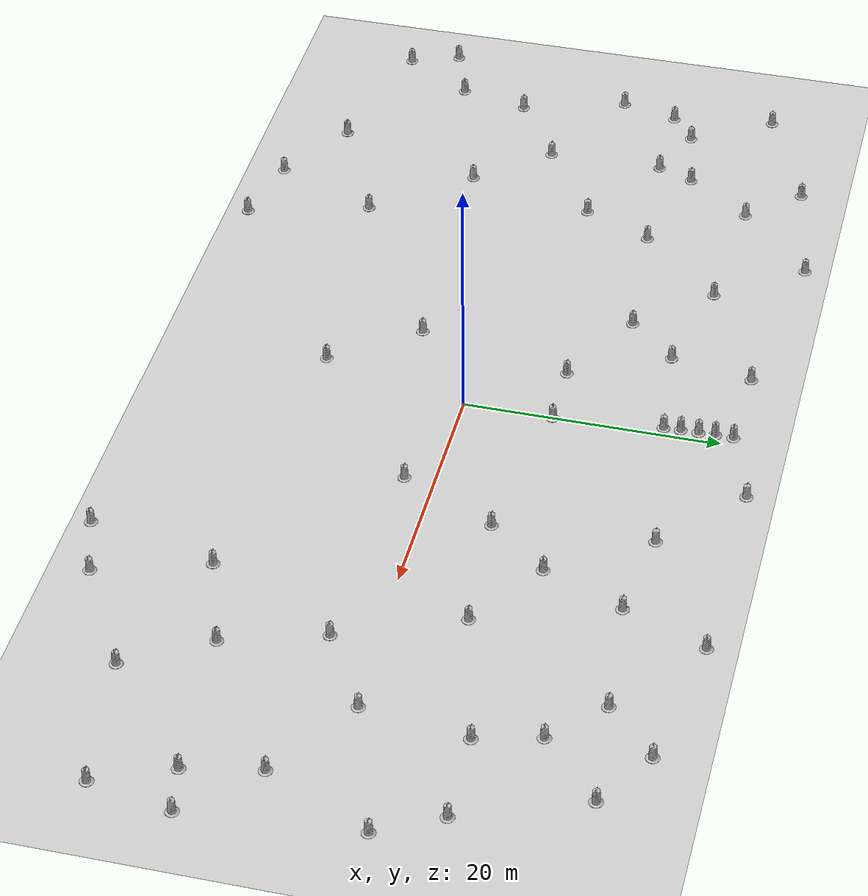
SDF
<sdf version="1.4">
 <world name="default">
  <model name="igvc_basic_course_plane">
   <static>1</static>
   <link name="link">
    <collision name="collision">
     <geometry><plane><normal>0 0 1</normal><size>100 50</size></plane></geometry>
     <surface><friction><ode><mu>100</mu><mu2>50</mu2></ode></friction></surface>
    </collision>
    <visual name="visual">
     <cast_shadows>0</cast_shadows>
     <geometry><plane><normal>0 0 1</normal><size>100 50</size></plane></geometry>
     <material>
      <script>
       <uri>model://igvc_basic_course_plane/materials/scripts</uri>
       <uri>model://igvc_basic_course_plane/materials/textures</uri>
       <name>igvc_basic_course_plane/Image</name>
      </script>
     </material>
    </visual>
    <velocity_decay><linear>0</linear><angular>0</angular></velocity_decay>
   </link>
  </model>
  <light name="sun" type="directional">
   <pose>0 0 10 0 -0 0</pose>
   <diffuse>0.8 0.8 0.8 1</diffuse>
   <specular>0.2 0.2 0.2 1</specular>
   <attenuation>
    <range>1000</range>
    <constant>0.9</constant>
    <linear>0.01</linear>
    <quadratic>0.001</quadratic>
   </attenuation>
   <direction>-0.5 0.1 -0.9</direction>
  </light>
  <physics type="ode">
   <max_step_size>0.001</max_step_size>
   <real_time_factor>1</real_time_factor>
   <real_time_update_rate>1000</real_time_update_rate>
   <gravity>0 0 -9.8</gravity>
  </physics>
  <scene><ambient>0.4 0.4 0.4 1</ambient><background>0.7 0.7 0.7 1</background><shadows>1</shadows></scene>
  <spherical_coordinates>
   <surface_model>EARTH_WGS84</surface_model>
   <latitude_deg>0</latitude_deg>
   <longitude_deg>0</longitude_deg>
   <elevation>0</elevation>
   <heading_deg>0</heading_deg>
  </spherical_coordinates>
  <model name="Construction Barrel">
   <link name="link">
    <inertial>
     <pose>0 0 0.4 0 -0 0</pose>
     <mass>500</mass>
     <inertia><ixx>51.2096</ixx><iyy>51.2096</iyy><izz>25</izz><ixy>0</ixy><ixz>0</ixz><iyz>0</iyz></inertia>
    </inertial>
    <collision name="collision">
     <geometry><mesh><uri>model://construction_barrel/meshes/construction_barrel.dae</uri></mesh></geometry>
    </collision>
    <visual name="visual">
     <geometry><mesh><uri>model://construction_barrel/meshes/construction_barrel.dae</uri></mesh></geometry>
    </visual>
    <velocity_decay><linear>0</linear><angular>0</angular></velocity_decay>
   </link>
   <pose>43.7404 -15.3735 0 0 -0 0</pose>
   <static>0</static>
  </model>
  <model name="Construction Barrel_0">
   <link name="link">
    <inertial>
     <pose>0 0 0.4 0 -0 0</pose>
     <mass>500</mass>
     <inertia><ixx>51.2096</ixx><iyy>51.2096</iyy><izz>25</izz><ixy>0</ixy><ixz>0</ixz><iyz>0</iyz></inertia>
    </inertial>
    <collision name="collision">
     <geometry><mesh><uri>model://construction_barrel/meshes/construction_barrel.dae</uri></mesh></geometry>
    </collision>
    <visual name="visual">
     <geometry><mesh><uri>model://construction_barrel/meshes/construction_barrel.dae</uri></mesh></geometry>
    </visual>
    <velocity_decay><linear>0</linear><angular>0</angular></velocity_decay>
   </link>
   <pose>45 -9 0 0 -0 0</pose>
   <static>0</static>
  </model>
  <model name="Construction Barrel_1">
   <link name="link">
    <inertial>
     <pose>0 0 0.4 0 -0 0</pose>
     <mass>500</mass>
     <inertia><ixx>51.2096</ixx><iyy>51.2096</iyy><izz>25</izz><ixy>0</ixy><ixz>0</ixz><iyz>0</iyz></inertia>
    </inertial>
    <collision name="collision">
     <geometry><mesh><uri>model://construction_barrel/meshes/construction_barrel.dae</uri></mesh></geometry>
    </collision>
    <visual name="visual">
     <geometry><mesh><uri>model://construction_barrel/meshes/construction_barrel.dae</uri></mesh></geometry>
    </visual>
    <velocity_decay><linear>0</linear><angular>0</angular></velocity_decay>
   </link>
   <pose>41.2248 -9.74021 0 0 -0 0</pose>
   <static>0</static>
  </model>
  <model name="Construction Barrel_2">
   <link name="link">
    <inertial>
     <pose>0 0 0.4 0 -0 0</pose>
     <mass>500</mass>
     <inertia><ixx>51.2096</ixx><iyy>51.2096</iyy><izz>25</izz><ixy>0</ixy><ixz>0</ixz><iyz>0</iyz></inertia>
    </inertial>
    <collision name="collision">
     <geometry><mesh><uri>model://construction_barrel/meshes/construction_barrel.dae</uri></mesh></geometry>
    </collision>
    <visual name="visual">
     <geometry><mesh><uri>model://construction_barrel/meshes/construction_barrel.dae</uri></mesh></geometry>
    </visual>
    <velocity_decay><linear>0</linear><angular>0</angular></velocity_decay>
   </link>
   <pose>43.782 4.12723 0 0 -0 0</pose>
   <static>0</static>
  </model>
  <model name="Construction Barrel_3">
   <link name="link">
    <inertial>
     <pose>0 0 0.4 0 -0 0</pose>
     <mass>500</mass>
     <inertia><ixx>51.2096</ixx><iyy>51.2096</iyy><izz>25</izz><ixy>0</ixy><ixz>0</ixz><iyz>0</iyz></inertia>
    </inertial>
    <collision name="collision">
     <geometry><mesh><uri>model://construction_barrel/meshes/construction_barrel.dae</uri></mesh></geometry>
    </collision>
    <visual name="visual">
     <geometry><mesh><uri>model://construction_barrel/meshes/construction_barrel.dae</uri></mesh></geometry>
    </visual>
    <velocity_decay><linear>0</linear><angular>0</angular></velocity_decay>
   </link>
   <pose>40.0575 -4.01712 0 0 -0 0</pose>
   <static>0</static>
  </model>
  <model name="Construction Barrel_4">
   <link name="link">
    <inertial>
     <pose>0 0 0.4 0 -0 0</pose>
     <mass>500</mass>
     <inertia><ixx>51.2096</ixx><iyy>51.2096</iyy><izz>25</izz><ixy>0</ixy><ixz>0</ixz><iyz>0</iyz></inertia>
    </inertial>
    <collision name="collision">
     <geometry><mesh><uri>model://construction_barrel/meshes/construction_barrel.dae</uri></mesh></geometry>
    </collision>
    <visual name="visual">
     <geometry><mesh><uri>model://construction_barrel/meshes/construction_barrel.dae</uri></mesh></geometry>
    </visual>
    <velocity_decay><linear>0</linear><angular>0</angular></velocity_decay>
   </link>
   <pose>32.9209 0.512122 0 0 -0 0</pose>
   <static>0</static>
  </model>
  <model name="Construction Barrel_5">
   <link name="link">
    <inertial>
     <pose>0 0 0.4 0 -0 0</pose>
     <mass>500</mass>
     <inertia><ixx>51.2096</ixx><iyy>51.2096</iyy><izz>25</izz><ixy>0</ixy><ixz>0</ixz><iyz>0</iyz></inertia>
    </inertial>
    <collision name="collision">
     <geometry><mesh><uri>model://construction_barrel/meshes/construction_barrel.dae</uri></mesh></geometry>
    </collision>
    <visual name="visual">
     <geometry><mesh><uri>model://construction_barrel/meshes/construction_barrel.dae</uri></mesh></geometry>
    </visual>
    <velocity_decay><linear>0</linear><angular>0</angular></velocity_decay>
   </link>
   <pose>41.2616 8.85082 0 0 -0 0</pose>
   <static>0</static>
  </model>
  <model name="Construction Barrel_6">
   <link name="link">
    <inertial>
     <pose>0 0 0.4 0 -0 0</pose>
     <mass>500</mass>
     <inertia><ixx>51.2096</ixx><iyy>51.2096</iyy><izz>25</izz><ixy>0</ixy><ixz>0</ixz><iyz>0</iyz></inertia>
    </inertial>
    <collision name="collision">
     <geometry><mesh><uri>model://construction_barrel/meshes/construction_barrel.dae</uri></mesh></geometry>
    </collision>
    <visual name="visual">
     <geometry><mesh><uri>model://construction_barrel/meshes/construction_barrel.dae</uri></mesh></geometry>
    </visual>
    <velocity_decay><linear>0</linear><angular>0</angular></velocity_decay>
   </link>
   <pose>34.0311 8.70734 0 0 -0 0</pose>
   <static>0</static>
  </model>
  <model name="Construction Barrel_7">
   <link name="link">
    <inertial>
     <pose>0 0 0.4 0 -0 0</pose>
     <mass>500</mass>
     <inertia><ixx>51.2096</ixx><iyy>51.2096</iyy><izz>25</izz><ixy>0</ixy><ixz>0</ixz><iyz>0</iyz></inertia>
    </inertial>
    <collision name="collision">
     <geometry><mesh><uri>model://construction_barrel/meshes/construction_barrel.dae</uri></mesh></geometry>
    </collision>
    <visual name="visual">
     <geometry><mesh><uri>model://construction_barrel/meshes/construction_barrel.dae</uri></mesh></geometry>
    </visual>
    <velocity_decay><linear>0</linear><angular>0</angular></velocity_decay>
   </link>
   <pose>29.0239 -10.8232 0 0 -0 0</pose>
   <static>0</static>
  </model>
  <model name="Construction Barrel_8">
   <link name="link">
    <inertial>
     <pose>0 0 0.4 0 -0 0</pose>
     <mass>500</mass>
     <inertia><ixx>51.2096</ixx><iyy>51.2096</iyy><izz>25</izz><ixy>0</ixy><ixz>0</ixz><iyz>0</iyz></inertia>
    </inertial>
    <collision name="collision">
     <geometry><mesh><uri>model://construction_barrel/meshes/construction_barrel.dae</uri></mesh></geometry>
    </collision>
    <visual name="visual">
     <geometry><mesh><uri>model://construction_barrel/meshes/construction_barrel.dae</uri></mesh></geometry>
    </visual>
    <velocity_decay><linear>0</linear><angular>0</angular></velocity_decay>
   </link>
   <pose>32.7855 -16.9706 0 0 -0 0</pose>
   <static>0</static>
  </model>
  <model name="Construction Barrel_9">
   <link name="link">
    <inertial>
     <pose>0 0 0.4 0 -0 0</pose>
     <mass>500</mass>
     <inertia><ixx>51.2096</ixx><iyy>51.2096</iyy><izz>25</izz><ixy>0</ixy><ixz>0</ixz><iyz>0</iyz></inertia>
    </inertial>
    <collision name="collision">
     <geometry><mesh><uri>model://construction_barrel/meshes/construction_barrel.dae</uri></mesh></geometry>
    </collision>
    <visual name="visual">
     <geometry><mesh><uri>model://construction_barrel/meshes/construction_barrel.dae</uri></mesh></geometry>
    </visual>
    <velocity_decay><linear>0</linear><angular>0</angular></velocity_decay>
   </link>
   <pose>26.6498 -3.23742 0 0 -0 0</pose>
   <static>0</static>
  </model>
  <model name="Construction Barrel_10">
   <link name="link">
    <inertial>
     <pose>0 0 0.4 0 -0 0</pose>
     <mass>500</mass>
     <inertia><ixx>51.2096</ixx><iyy>51.2096</iyy><izz>25</izz><ixy>0</ixy><ixz>0</ixz><iyz>0</iyz></inertia>
    </inertial>
    <collision name="collision">
     <geometry><mesh><uri>model://construction_barrel/meshes/construction_barrel.dae</uri></mesh></geometry>
    </collision>
    <visual name="visual">
     <geometry><mesh><uri>model://construction_barrel/meshes/construction_barrel.dae</uri></mesh></geometry>
    </visual>
    <velocity_decay><linear>0</linear><angular>0</angular></velocity_decay>
   </link>
   <pose>32.7998 13.5426 0 0 -0 0</pose>
   <static>0</static>
  </model>
  <model name="Construction Barrel_11">
   <link name="link">
    <inertial>
     <pose>0 0 0.4 0 -0 0</pose>
     <mass>500</mass>
     <inertia><ixx>51.2096</ixx><iyy>51.2096</iyy><izz>25</izz><ixy>0</ixy><ixz>0</ixz><iyz>0</iyz></inertia>
    </inertial>
    <collision name="collision">
     <geometry><mesh><uri>model://construction_barrel/meshes/construction_barrel.dae</uri></mesh></geometry>
    </collision>
    <visual name="visual">
     <geometry><mesh><uri>model://construction_barrel/meshes/construction_barrel.dae</uri></mesh></geometry>
    </visual>
    <velocity_decay><linear>0</linear><angular>0</angular></velocity_decay>
   </link>
   <pose>37.6765 18.1143 0 0 -0 0</pose>
   <static>0</static>
  </model>
  <model name="Construction Barrel_12">
   <link name="link">
    <inertial>
     <pose>0 0 0.4 0 -0 0</pose>
     <mass>500</mass>
     <inertia><ixx>51.2096</ixx><iyy>51.2096</iyy><izz>25</izz><ixy>0</ixy><ixz>0</ixz><iyz>0</iyz></inertia>
    </inertial>
    <collision name="collision">
     <geometry><mesh><uri>model://construction_barrel/meshes/construction_barrel.dae</uri></mesh></geometry>
    </collision>
    <visual name="visual">
     <geometry><mesh><uri>model://construction_barrel/meshes/construction_barrel.dae</uri></mesh></geometry>
    </visual>
    <velocity_decay><linear>0</linear><angular>0</angular></velocity_decay>
   </link>
   <pose>32.876 21.0172 0 0 -0 0</pose>
   <static>0</static>
  </model>
  <model name="Construction Barrel_13">
   <link name="link">
    <inertial>
     <pose>0 0 0.4 0 -0 0</pose>
     <mass>500</mass>
     <inertia><ixx>51.2096</ixx><iyy>51.2096</iyy><izz>25</izz><ixy>0</ixy><ixz>0</ixz><iyz>0</iyz></inertia>
    </inertial>
    <collision name="collision">
     <geometry><mesh><uri>model://construction_barrel/meshes/construction_barrel.dae</uri></mesh></geometry>
    </collision>
    <visual name="visual">
     <geometry><mesh><uri>model://construction_barrel/meshes/construction_barrel.dae</uri></mesh></geometry>
    </visual>
    <velocity_decay><linear>0</linear><angular>0</angular></velocity_decay>
   </link>
   <pose>28.9292 17.2011 0 0 -0 0</pose>
   <static>0</static>
  </model>
  <model name="Construction Barrel_14">
   <link name="link">
    <inertial>
     <pose>0 0 0.4 0 -0 0</pose>
     <mass>500</mass>
     <inertia><ixx>51.2096</ixx><iyy>51.2096</iyy><izz>25</izz><ixy>0</ixy><ixz>0</ixz><iyz>0</iyz></inertia>
    </inertial>
    <collision name="collision">
     <geometry><mesh><uri>model://construction_barrel/meshes/construction_barrel.dae</uri></mesh></geometry>
    </collision>
    <visual name="visual">
     <geometry><mesh><uri>model://construction_barrel/meshes/construction_barrel.dae</uri></mesh></geometry>
    </visual>
    <velocity_decay><linear>0</linear><angular>0</angular></velocity_decay>
   </link>
   <pose>22.8488 5.87364 0 0 -0 0</pose>
   <static>0</static>
  </model>
  <model name="Construction Barrel_15">
   <link name="link">
    <inertial>
     <pose>0 0 0.4 0 -0 0</pose>
     <mass>500</mass>
     <inertia><ixx>51.2096</ixx><iyy>51.2096</iyy><izz>25</izz><ixy>0</ixy><ixz>0</ixz><iyz>0</iyz></inertia>
    </inertial>
    <collision name="collision">
     <geometry><mesh><uri>model://construction_barrel/meshes/construction_barrel.dae</uri></mesh></geometry>
    </collision>
    <visual name="visual">
     <geometry><mesh><uri>model://construction_barrel/meshes/construction_barrel.dae</uri></mesh></geometry>
    </visual>
    <velocity_decay><linear>0</linear><angular>0</angular></velocity_decay>
   </link>
   <pose>21.5333 -13.391 0 0 -0 0</pose>
   <static>0</static>
  </model>
  <model name="Construction Barrel_16">
   <link name="link">
    <inertial>
     <pose>0 0 0.4 0 -0 0</pose>
     <mass>500</mass>
     <inertia><ixx>51.2096</ixx><iyy>51.2096</iyy><izz>25</izz><ixy>0</ixy><ixz>0</ixz><iyz>0</iyz></inertia>
    </inertial>
    <collision name="collision">
     <geometry><mesh><uri>model://construction_barrel/meshes/construction_barrel.dae</uri></mesh></geometry>
    </collision>
    <visual name="visual">
     <geometry><mesh><uri>model://construction_barrel/meshes/construction_barrel.dae</uri></mesh></geometry>
    </visual>
    <velocity_decay><linear>0</linear><angular>0</angular></velocity_decay>
   </link>
   <pose>24.2334 -21.835 0 0 -0 0</pose>
   <static>0</static>
  </model>
  <model name="Construction Barrel_17">
   <link name="link">
    <inertial>
     <pose>0 0 0.4 0 -0 0</pose>
     <mass>500</mass>
     <inertia><ixx>51.2096</ixx><iyy>51.2096</iyy><izz>25</izz><ixy>0</ixy><ixz>0</ixz><iyz>0</iyz></inertia>
    </inertial>
    <collision name="collision">
     <geometry><mesh><uri>model://construction_barrel/meshes/construction_barrel.dae</uri></mesh></geometry>
    </collision>
    <visual name="visual">
     <geometry><mesh><uri>model://construction_barrel/meshes/construction_barrel.dae</uri></mesh></geometry>
    </visual>
    <velocity_decay><linear>0</linear><angular>0</angular></velocity_decay>
   </link>
   <pose>19.3251 -23.4146 0 0 -0 0</pose>
   <static>0</static>
  </model>
  <model name="Construction Barrel_18">
   <link name="link">
    <inertial>
     <pose>0 0 0.4 0 -0 0</pose>
     <mass>500</mass>
     <inertia><ixx>51.2096</ixx><iyy>51.2096</iyy><izz>25</izz><ixy>0</ixy><ixz>0</ixz><iyz>0</iyz></inertia>
    </inertial>
    <collision name="collision">
     <geometry><mesh><uri>model://construction_barrel/meshes/construction_barrel.dae</uri></mesh></geometry>
    </collision>
    <visual name="visual">
     <geometry><mesh><uri>model://construction_barrel/meshes/construction_barrel.dae</uri></mesh></geometry>
    </visual>
    <velocity_decay><linear>0</linear><angular>0</angular></velocity_decay>
   </link>
   <pose>21.8168 22.7379 0 0 -0 0</pose>
   <static>0</static>
  </model>
  <model name="Construction Barrel_19">
   <link name="link">
    <inertial>
     <pose>0 0 0.4 0 -0 0</pose>
     <mass>500</mass>
     <inertia><ixx>51.2096</ixx><iyy>51.2096</iyy><izz>25</izz><ixy>0</ixy><ixz>0</ixz><iyz>0</iyz></inertia>
    </inertial>
    <collision name="collision">
     <geometry><mesh><uri>model://construction_barrel/meshes/construction_barrel.dae</uri></mesh></geometry>
    </collision>
    <visual name="visual">
     <geometry><mesh><uri>model://construction_barrel/meshes/construction_barrel.dae</uri></mesh></geometry>
    </visual>
    <velocity_decay><linear>0</linear><angular>0</angular></velocity_decay>
   </link>
   <pose>19.3061 16.2604 0 0 -0 0</pose>
   <static>0</static>
  </model>
  <model name="Construction Barrel_20">
   <link name="link">
    <inertial>
     <pose>0 0 0.4 0 -0 0</pose>
     <mass>500</mass>
     <inertia><ixx>51.2096</ixx><iyy>51.2096</iyy><izz>25</izz><ixy>0</ixy><ixz>0</ixz><iyz>0</iyz></inertia>
    </inertial>
    <collision name="collision">
     <geometry><mesh><uri>model://construction_barrel/meshes/construction_barrel.dae</uri></mesh></geometry>
    </collision>
    <visual name="visual">
     <geometry><mesh><uri>model://construction_barrel/meshes/construction_barrel.dae</uri></mesh></geometry>
    </visual>
    <velocity_decay><linear>0</linear><angular>0</angular></velocity_decay>
   </link>
   <pose>16.6974 9.91408 0 0 -0 0</pose>
   <static>0</static>
  </model>
  <model name="Construction Barrel_21">
   <link name="link">
    <inertial>
     <pose>0 0 0.4 0 -0 0</pose>
     <mass>500</mass>
     <inertia><ixx>51.2096</ixx><iyy>51.2096</iyy><izz>25</izz><ixy>0</ixy><ixz>0</ixz><iyz>0</iyz></inertia>
    </inertial>
    <collision name="collision">
     <geometry><mesh><uri>model://construction_barrel/meshes/construction_barrel.dae</uri></mesh></geometry>
    </collision>
    <visual name="visual">
     <geometry><mesh><uri>model://construction_barrel/meshes/construction_barrel.dae</uri></mesh></geometry>
    </visual>
    <velocity_decay><linear>0</linear><angular>0</angular></velocity_decay>
   </link>
   <pose>12.9018 5.21234 0 0 -0 0</pose>
   <static>0</static>
  </model>
  <model name="Construction Barrel_22">
   <link name="link">
    <inertial>
     <pose>0 0 0.4 0 -0 0</pose>
     <mass>500</mass>
     <inertia><ixx>51.2096</ixx><iyy>51.2096</iyy><izz>25</izz><ixy>0</ixy><ixz>0</ixz><iyz>0</iyz></inertia>
    </inertial>
    <collision name="collision">
     <geometry><mesh><uri>model://construction_barrel/meshes/construction_barrel.dae</uri></mesh></geometry>
    </collision>
    <visual name="visual">
     <geometry><mesh><uri>model://construction_barrel/meshes/construction_barrel.dae</uri></mesh></geometry>
    </visual>
    <velocity_decay><linear>0</linear><angular>0</angular></velocity_decay>
   </link>
   <pose>9.27941 -2.29256 0 0 -0 0</pose>
   <static>0</static>
  </model>
  <model name="Construction Barrel_23">
   <link name="link">
    <inertial>
     <pose>0 0 0.4 0 -0 0</pose>
     <mass>500</mass>
     <inertia><ixx>51.2096</ixx><iyy>51.2096</iyy><izz>25</izz><ixy>0</ixy><ixz>0</ixz><iyz>0</iyz></inertia>
    </inertial>
    <collision name="collision">
     <geometry><mesh><uri>model://construction_barrel/meshes/construction_barrel.dae</uri></mesh></geometry>
    </collision>
    <visual name="visual">
     <geometry><mesh><uri>model://construction_barrel/meshes/construction_barrel.dae</uri></mesh></geometry>
    </visual>
    <velocity_decay><linear>0</linear><angular>0</angular></velocity_decay>
   </link>
   <pose>0.030678 7.00095 0 0 -0 0</pose>
   <static>0</static>
  </model>
  <model name="Construction Barrel_24">
   <link name="link">
    <inertial>
     <pose>0 0 0.4 0 -0 0</pose>
     <mass>500</mass>
     <inertia><ixx>51.2096</ixx><iyy>51.2096</iyy><izz>25</izz><ixy>0</ixy><ixz>0</ixz><iyz>0</iyz></inertia>
    </inertial>
    <collision name="collision">
     <geometry><mesh><uri>model://construction_barrel/meshes/construction_barrel.dae</uri></mesh></geometry>
    </collision>
    <visual name="visual">
     <geometry><mesh><uri>model://construction_barrel/meshes/construction_barrel.dae</uri></mesh></geometry>
    </visual>
    <velocity_decay><linear>0</linear><angular>0</angular></velocity_decay>
   </link>
   <pose>11.8588 17.2293 0 0 -0 0</pose>
   <static>0</static>
  </model>
  <model name="Construction Barrel_25">
   <link name="link">
    <inertial>
     <pose>0 0 0.4 0 -0 0</pose>
     <mass>500</mass>
     <inertia><ixx>51.2096</ixx><iyy>51.2096</iyy><izz>25</izz><ixy>0</ixy><ixz>0</ixz><iyz>0</iyz></inertia>
    </inertial>
    <collision name="collision">
     <geometry><mesh><uri>model://construction_barrel/meshes/construction_barrel.dae</uri></mesh></geometry>
    </collision>
    <visual name="visual">
     <geometry><mesh><uri>model://construction_barrel/meshes/construction_barrel.dae</uri></mesh></geometry>
    </visual>
    <velocity_decay><linear>0</linear><angular>0</angular></velocity_decay>
   </link>
   <pose>5.51889 22.853 0 0 -0 0</pose>
   <static>0</static>
  </model>
  <model name="Construction Barrel_26">
   <link name="link">
    <inertial>
     <pose>0 0 0.4 0 -0 0</pose>
     <mass>500</mass>
     <inertia><ixx>51.2096</ixx><iyy>51.2096</iyy><izz>25</izz><ixy>0</ixy><ixz>0</ixz><iyz>0</iyz></inertia>
    </inertial>
    <collision name="collision">
     <geometry><mesh><uri>model://construction_barrel/meshes/construction_barrel.dae</uri></mesh></geometry>
    </collision>
    <visual name="visual">
     <geometry><mesh><uri>model://construction_barrel/meshes/construction_barrel.dae</uri></mesh></geometry>
    </visual>
    <velocity_decay><linear>0</linear><angular>0</angular></velocity_decay>
   </link>
   <pose>-2.87657 -11.666 0 0 -0 0</pose>
   <static>0</static>
  </model>
  <model name="Construction Barrel_27">
   <link name="link">
    <inertial>
     <pose>0 0 0.4 0 -0 0</pose>
     <mass>500</mass>
     <inertia><ixx>51.2096</ixx><iyy>51.2096</iyy><izz>25</izz><ixy>0</ixy><ixz>0</ixz><iyz>0</iyz></inertia>
    </inertial>
    <collision name="collision">
     <geometry><mesh><uri>model://construction_barrel/meshes/construction_barrel.dae</uri></mesh></geometry>
    </collision>
    <visual name="visual">
     <geometry><mesh><uri>model://construction_barrel/meshes/construction_barrel.dae</uri></mesh></geometry>
    </visual>
    <velocity_decay><linear>0</linear><angular>0</angular></velocity_decay>
   </link>
   <pose>-7.83041 -5.17509 0 0 -0 0</pose>
   <static>0</static>
  </model>
  <model name="Construction Barrel_28">
   <link name="link">
    <inertial>
     <pose>0 0 0.4 0 -0 0</pose>
     <mass>500</mass>
     <inertia><ixx>51.2096</ixx><iyy>51.2096</iyy><izz>25</izz><ixy>0</ixy><ixz>0</ixz><iyz>0</iyz></inertia>
    </inertial>
    <collision name="collision">
     <geometry><mesh><uri>model://construction_barrel/meshes/construction_barrel.dae</uri></mesh></geometry>
    </collision>
    <visual name="visual">
     <geometry><mesh><uri>model://construction_barrel/meshes/construction_barrel.dae</uri></mesh></geometry>
    </visual>
    <velocity_decay><linear>0</linear><angular>0</angular></velocity_decay>
   </link>
   <pose>-5.39881 6.95752 0 0 -0 0</pose>
   <static>0</static>
  </model>
  <model name="Construction Barrel_29">
   <link name="link">
    <inertial>
     <pose>0 0 0.4 0 -0 0</pose>
     <mass>500</mass>
     <inertia><ixx>51.2096</ixx><iyy>51.2096</iyy><izz>25</izz><ixy>0</ixy><ixz>0</ixz><iyz>0</iyz></inertia>
    </inertial>
    <collision name="collision">
     <geometry><mesh><uri>model://construction_barrel/meshes/construction_barrel.dae</uri></mesh></geometry>
    </collision>
    <visual name="visual">
     <geometry><mesh><uri>model://construction_barrel/meshes/construction_barrel.dae</uri></mesh></geometry>
    </visual>
    <velocity_decay><linear>0</linear><angular>0</angular></velocity_decay>
   </link>
   <pose>-9.07325 14.5286 0 0 -0 0</pose>
   <static>0</static>
  </model>
  <model name="Construction Barrel_30">
   <link name="link">
    <inertial>
     <pose>0 0 0.4 0 -0 0</pose>
     <mass>500</mass>
     <inertia><ixx>51.2096</ixx><iyy>51.2096</iyy><izz>25</izz><ixy>0</ixy><ixz>0</ixz><iyz>0</iyz></inertia>
    </inertial>
    <collision name="collision">
     <geometry><mesh><uri>model://construction_barrel/meshes/construction_barrel.dae</uri></mesh></geometry>
    </collision>
    <visual name="visual">
     <geometry><mesh><uri>model://construction_barrel/meshes/construction_barrel.dae</uri></mesh></geometry>
    </visual>
    <velocity_decay><linear>0</linear><angular>0</angular></velocity_decay>
   </link>
   <pose>-7.89961 21.0026 0 0 -0 0</pose>
   <static>0</static>
  </model>
  <model name="Construction Barrel_31">
   <link name="link">
    <inertial>
     <pose>0 0 0.4 0 -0 0</pose>
     <mass>500</mass>
     <inertia><ixx>51.2096</ixx><iyy>51.2096</iyy><izz>25</izz><ixy>0</ixy><ixz>0</ixz><iyz>0</iyz></inertia>
    </inertial>
    <collision name="collision">
     <geometry><mesh><uri>model://construction_barrel/meshes/construction_barrel.dae</uri></mesh></geometry>
    </collision>
    <visual name="visual">
     <geometry><mesh><uri>model://construction_barrel/meshes/construction_barrel.dae</uri></mesh></geometry>
    </visual>
    <velocity_decay><linear>0</linear><angular>0</angular></velocity_decay>
   </link>
   <pose>-12.625 10.7418 0 0 -0 0</pose>
   <static>0</static>
  </model>
  <model name="Construction Barrel_32">
   <link name="link">
    <inertial>
     <pose>0 0 0.4 0 -0 0</pose>
     <mass>500</mass>
     <inertia><ixx>51.2096</ixx><iyy>51.2096</iyy><izz>25</izz><ixy>0</ixy><ixz>0</ixz><iyz>0</iyz></inertia>
    </inertial>
    <collision name="collision">
     <geometry><mesh><uri>model://construction_barrel/meshes/construction_barrel.dae</uri></mesh></geometry>
    </collision>
    <visual name="visual">
     <geometry><mesh><uri>model://construction_barrel/meshes/construction_barrel.dae</uri></mesh></geometry>
    </visual>
    <velocity_decay><linear>0</linear><angular>0</angular></velocity_decay>
   </link>
   <pose>-17.6749 16.3687 0 0 -0 0</pose>
   <static>0</static>
  </model>
  <model name="Construction Barrel_33">
   <link name="link">
    <inertial>
     <pose>0 0 0.4 0 -0 0</pose>
     <mass>500</mass>
     <inertia><ixx>51.2096</ixx><iyy>51.2096</iyy><izz>25</izz><ixy>0</ixy><ixz>0</ixz><iyz>0</iyz></inertia>
    </inertial>
    <collision name="collision">
     <geometry><mesh><uri>model://construction_barrel/meshes/construction_barrel.dae</uri></mesh></geometry>
    </collision>
    <visual name="visual">
     <geometry><mesh><uri>model://construction_barrel/meshes/construction_barrel.dae</uri></mesh></geometry>
    </visual>
    <velocity_decay><linear>0</linear><angular>0</angular></velocity_decay>
   </link>
   <pose>-22.429 23 0 0 -0 0</pose>
   <static>0</static>
  </model>
  <model name="Construction Barrel_34">
   <link name="link">
    <inertial>
     <pose>0 0 0.4 0 -0 0</pose>
     <mass>500</mass>
     <inertia><ixx>51.2096</ixx><iyy>51.2096</iyy><izz>25</izz><ixy>0</ixy><ixz>0</ixz><iyz>0</iyz></inertia>
    </inertial>
    <collision name="collision">
     <geometry><mesh><uri>model://construction_barrel/meshes/construction_barrel.dae</uri></mesh></geometry>
    </collision>
    <visual name="visual">
     <geometry><mesh><uri>model://construction_barrel/meshes/construction_barrel.dae</uri></mesh></geometry>
    </visual>
    <velocity_decay><linear>0</linear><angular>0</angular></velocity_decay>
   </link>
   <pose>-0.768022 15.4478 0 0 -0 0</pose>
   <static>0</static>
  </model>
  <model name="Construction Barrel_35">
   <link name="link">
    <inertial>
     <pose>0 0 0.4 0 -0 0</pose>
     <mass>500</mass>
     <inertia><ixx>51.2096</ixx><iyy>51.2096</iyy><izz>25</izz><ixy>0</ixy><ixz>0</ixz><iyz>0</iyz></inertia>
    </inertial>
    <collision name="collision">
     <geometry><mesh><uri>model://construction_barrel/meshes/construction_barrel.dae</uri></mesh></geometry>
    </collision>
    <visual name="visual">
     <geometry><mesh><uri>model://construction_barrel/meshes/construction_barrel.dae</uri></mesh></geometry>
    </visual>
    <velocity_decay><linear>0</linear><angular>0</angular></velocity_decay>
   </link>
   <pose>-0.818772 16.758 0 0 -0 0</pose>
   <static>0</static>
  </model>
  <model name="Construction Barrel_36">
   <link name="link">
    <inertial>
     <pose>0 0 0.4 0 -0 0</pose>
     <mass>500</mass>
     <inertia><ixx>51.2096</ixx><iyy>51.2096</iyy><izz>25</izz><ixy>0</ixy><ixz>0</ixz><iyz>0</iyz></inertia>
    </inertial>
    <collision name="collision">
     <geometry><mesh><uri>model://construction_barrel/meshes/construction_barrel.dae</uri></mesh></geometry>
    </collision>
    <visual name="visual">
     <geometry><mesh><uri>model://construction_barrel/meshes/construction_barrel.dae</uri></mesh></geometry>
    </visual>
    <velocity_decay><linear>0</linear><angular>0</angular></velocity_decay>
   </link>
   <pose>-0.830051 18.1287 0 0 -0 0</pose>
   <static>0</static>
  </model>
  <model name="Construction Barrel_37">
   <link name="link">
    <inertial>
     <pose>0 0 0.4 0 -0 0</pose>
     <mass>500</mass>
     <inertia><ixx>51.2096</ixx><iyy>51.2096</iyy><izz>25</izz><ixy>0</ixy><ixz>0</ixz><iyz>0</iyz></inertia>
    </inertial>
    <collision name="collision">
     <geometry><mesh><uri>model://construction_barrel/meshes/construction_barrel.dae</uri></mesh></geometry>
    </collision>
    <visual name="visual">
     <geometry><mesh><uri>model://construction_barrel/meshes/construction_barrel.dae</uri></mesh></geometry>
    </visual>
    <velocity_decay><linear>0</linear><angular>0</angular></velocity_decay>
   </link>
   <pose>-0.863216 19.4061 0 0 -0 0</pose>
   <static>0</static>
  </model>
  <model name="Construction Barrel_38">
   <link name="link">
    <inertial>
     <pose>0 0 0.4 0 -0 0</pose>
     <mass>500</mass>
     <inertia><ixx>51.2096</ixx><iyy>51.2096</iyy><izz>25</izz><ixy>0</ixy><ixz>0</ixz><iyz>0</iyz></inertia>
    </inertial>
    <collision name="collision">
     <geometry><mesh><uri>model://construction_barrel/meshes/construction_barrel.dae</uri></mesh></geometry>
    </collision>
    <visual name="visual">
     <geometry><mesh><uri>model://construction_barrel/meshes/construction_barrel.dae</uri></mesh></geometry>
    </visual>
    <velocity_decay><linear>0</linear><angular>0</angular></velocity_decay>
   </link>
   <pose>-0.843208 20.8015 0 0 -0 0</pose>
   <static>0</static>
  </model>
  <model name="Construction Barrel_39">
   <link name="link">
    <inertial>
     <pose>0 0 0.4 0 -0 0</pose>
     <mass>500</mass>
     <inertia><ixx>51.2096</ixx><iyy>51.2096</iyy><izz>25</izz><ixy>0</ixy><ixz>0</ixz><iyz>0</iyz></inertia>
    </inertial>
    <collision name="collision">
     <geometry><mesh><uri>model://construction_barrel/meshes/construction_barrel.dae</uri></mesh></geometry>
    </collision>
    <visual name="visual">
     <geometry><mesh><uri>model://construction_barrel/meshes/construction_barrel.dae</uri></mesh></geometry>
    </visual>
    <velocity_decay><linear>0</linear><angular>0</angular></velocity_decay>
   </link>
   <pose>-19.9215 -23.1481 0 0 -0 0</pose>
   <static>0</static>
  </model>
  <model name="Construction Barrel_40">
   <link name="link">
    <inertial>
     <pose>0 0 0.4 0 -0 0</pose>
     <mass>500</mass>
     <inertia><ixx>51.2096</ixx><iyy>51.2096</iyy><izz>25</izz><ixy>0</ixy><ixz>0</ixz><iyz>0</iyz></inertia>
    </inertial>
    <collision name="collision">
     <geometry><mesh><uri>model://construction_barrel/meshes/construction_barrel.dae</uri></mesh></geometry>
    </collision>
    <visual name="visual">
     <geometry><mesh><uri>model://construction_barrel/meshes/construction_barrel.dae</uri></mesh></geometry>
    </visual>
    <velocity_decay><linear>0</linear><angular>0</angular></velocity_decay>
   </link>
   <pose>-26.1218 -21.8133 0 0 -0 0</pose>
   <static>0</static>
  </model>
  <model name="Construction Barrel_41">
   <link name="link">
    <inertial>
     <pose>0 0 0.4 0 -0 0</pose>
     <mass>500</mass>
     <inertia><ixx>51.2096</ixx><iyy>51.2096</iyy><izz>25</izz><ixy>0</ixy><ixz>0</ixz><iyz>0</iyz></inertia>
    </inertial>
    <collision name="collision">
     <geometry><mesh><uri>model://construction_barrel/meshes/construction_barrel.dae</uri></mesh></geometry>
    </collision>
    <visual name="visual">
     <geometry><mesh><uri>model://construction_barrel/meshes/construction_barrel.dae</uri></mesh></geometry>
    </visual>
    <velocity_decay><linear>0</linear><angular>0</angular></velocity_decay>
   </link>
   <pose>-22.65 -13.4954 0 0 -0 0</pose>
   <static>0</static>
  </model>
  <model name="Construction Barrel_42">
   <link name="link">
    <inertial>
     <pose>0 0 0.4 0 -0 0</pose>
     <mass>500</mass>
     <inertia><ixx>51.2096</ixx><iyy>51.2096</iyy><izz>25</izz><ixy>0</ixy><ixz>0</ixz><iyz>0</iyz></inertia>
    </inertial>
    <collision name="collision">
     <geometry><mesh><uri>model://construction_barrel/meshes/construction_barrel.dae</uri></mesh></geometry>
    </collision>
    <visual name="visual">
     <geometry><mesh><uri>model://construction_barrel/meshes/construction_barrel.dae</uri></mesh></geometry>
    </visual>
    <velocity_decay><linear>0</linear><angular>0</angular></velocity_decay>
   </link>
   <pose>-32.5939 -18.0364 0 0 -0 0</pose>
   <static>0</static>
  </model>
  <model name="Construction Barrel_43">
   <link name="link">
    <inertial>
     <pose>0 0 0.4 0 -0 0</pose>
     <mass>500</mass>
     <inertia><ixx>51.2096</ixx><iyy>51.2096</iyy><izz>25</izz><ixy>0</ixy><ixz>0</ixz><iyz>0</iyz></inertia>
    </inertial>
    <collision name="collision">
     <geometry><mesh><uri>model://construction_barrel/meshes/construction_barrel.dae</uri></mesh></geometry>
    </collision>
    <visual name="visual">
     <geometry><mesh><uri>model://construction_barrel/meshes/construction_barrel.dae</uri></mesh></geometry>
    </visual>
    <velocity_decay><linear>0</linear><angular>0</angular></velocity_decay>
   </link>
   <pose>-28.7563 -6.05337 0 0 -0 0</pose>
   <static>0</static>
  </model>
  <model name="Construction Barrel_44">
   <link name="link">
    <inertial>
     <pose>0 0 0.4 0 -0 0</pose>
     <mass>500</mass>
     <inertia><ixx>51.2096</ixx><iyy>51.2096</iyy><izz>25</izz><ixy>0</ixy><ixz>0</ixz><iyz>0</iyz></inertia>
    </inertial>
    <collision name="collision">
     <geometry><mesh><uri>model://construction_barrel/meshes/construction_barrel.dae</uri></mesh></geometry>
    </collision>
    <visual name="visual">
     <geometry><mesh><uri>model://construction_barrel/meshes/construction_barrel.dae</uri></mesh></geometry>
    </visual>
    <velocity_decay><linear>0</linear><angular>0</angular></velocity_decay>
   </link>
   <pose>-26.2868 4.2574 0 0 -0 0</pose>
   <static>0</static>
  </model>
  <model name="Construction Barrel_45">
   <link name="link">
    <inertial>
     <pose>0 0 0.4 0 -0 0</pose>
     <mass>500</mass>
     <inertia><ixx>51.2096</ixx><iyy>51.2096</iyy><izz>25</izz><ixy>0</ixy><ixz>0</ixz><iyz>0</iyz></inertia>
    </inertial>
    <collision name="collision">
     <geometry><mesh><uri>model://construction_barrel/meshes/construction_barrel.dae</uri></mesh></geometry>
    </collision>
    <visual name="visual">
     <geometry><mesh><uri>model://construction_barrel/meshes/construction_barrel.dae</uri></mesh></geometry>
    </visual>
    <velocity_decay><linear>0</linear><angular>0</angular></velocity_decay>
   </link>
   <pose>-23.8358 9.76797 0 0 -0 0</pose>
   <static>0</static>
  </model>
  <model name="Construction Barrel_46">
   <link name="link">
    <inertial>
     <pose>0 0 0.4 0 -0 0</pose>
     <mass>500</mass>
     <inertia><ixx>51.2096</ixx><iyy>51.2096</iyy><izz>25</izz><ixy>0</ixy><ixz>0</ixz><iyz>0</iyz></inertia>
    </inertial>
    <collision name="collision">
     <geometry><mesh><uri>model://construction_barrel/meshes/construction_barrel.dae</uri></mesh></geometry>
    </collision>
    <visual name="visual">
     <geometry><mesh><uri>model://construction_barrel/meshes/construction_barrel.dae</uri></mesh></geometry>
    </visual>
    <velocity_decay><linear>0</linear><angular>0</angular></velocity_decay>
   </link>
   <pose>-28.7845 17.0716 0 0 -0 0</pose>
   <static>0</static>
  </model>
  <model name="Construction Barrel_47">
   <link name="link">
    <inertial>
     <pose>0 0 0.4 0 -0 0</pose>
     <mass>500</mass>
     <inertia><ixx>51.2096</ixx><iyy>51.2096</iyy><izz>25</izz><ixy>0</ixy><ixz>0</ixz><iyz>0</iyz></inertia>
    </inertial>
    <collision name="collision">
     <geometry><mesh><uri>model://construction_barrel/meshes/construction_barrel.dae</uri></mesh></geometry>
    </collision>
    <visual name="visual">
     <geometry><mesh><uri>model://construction_barrel/meshes/construction_barrel.dae</uri></mesh></geometry>
    </visual>
    <velocity_decay><linear>0</linear><angular>0</angular></velocity_decay>
   </link>
   <pose>-32.5405 21.1519 0 0 -0 0</pose>
   <static>0</static>
  </model>
  <model name="Construction Barrel_48">
   <link name="link">
    <inertial>
     <pose>0 0 0.4 0 -0 0</pose>
     <mass>500</mass>
     <inertia><ixx>51.2096</ixx><iyy>51.2096</iyy><izz>25</izz><ixy>0</ixy><ixz>0</ixz><iyz>0</iyz></inertia>
    </inertial>
    <collision name="collision">
     <geometry><mesh><uri>model://construction_barrel/meshes/construction_barrel.dae</uri></mesh></geometry>
    </collision>
    <visual name="visual">
     <geometry><mesh><uri>model://construction_barrel/meshes/construction_barrel.dae</uri></mesh></geometry>
    </visual>
    <velocity_decay><linear>0</linear><angular>0</angular></velocity_decay>
   </link>
   <pose>-32.5563 11.8255 0 0 -0 0</pose>
   <static>0</static>
  </model>
  <model name="Construction Barrel_49">
   <link name="link">
    <inertial>
     <pose>0 0 0.4 0 -0 0</pose>
     <mass>500</mass>
     <inertia><ixx>51.2096</ixx><iyy>51.2096</iyy><izz>25</izz><ixy>0</ixy><ixz>0</ixz><iyz>0</iyz></inertia>
    </inertial>
    <collision name="collision">
     <geometry><mesh><uri>model://construction_barrel/meshes/construction_barrel.dae</uri></mesh></geometry>
    </collision>
    <visual name="visual">
     <geometry><mesh><uri>model://construction_barrel/meshes/construction_barrel.dae</uri></mesh></geometry>
    </visual>
    <velocity_decay><linear>0</linear><angular>0</angular></velocity_decay>
   </link>
   <pose>-33.7434 8.92209 0 0 -0 0</pose>
   <static>0</static>
  </model>
  <model name="Construction Barrel_50">
   <link name="link">
    <inertial>
     <pose>0 0 0.4 0 -0 0</pose>
     <mass>500</mass>
     <inertia><ixx>51.2096</ixx><iyy>51.2096</iyy><izz>25</izz><ixy>0</ixy><ixz>0</ixz><iyz>0</iyz></inertia>
    </inertial>
    <collision name="collision">
     <geometry><mesh><uri>model://construction_barrel/meshes/construction_barrel.dae</uri></mesh></geometry>
    </collision>
    <visual name="visual">
     <geometry><mesh><uri>model://construction_barrel/meshes/construction_barrel.dae</uri></mesh></geometry>
    </visual>
    <velocity_decay><linear>0</linear><angular>0</angular></velocity_decay>
   </link>
   <pose>-33.5529 -0.357008 0 0 -0 0</pose>
   <static>0</static>
  </model>
  <model name="Construction Barrel_51">
   <link name="link">
    <inertial>
     <pose>0 0 0.4 0 -0 0</pose>
     <mass>500</mass>
     <inertia><ixx>51.2096</ixx><iyy>51.2096</iyy><izz>25</izz><ixy>0</ixy><ixz>0</ixz><iyz>0</iyz></inertia>
    </inertial>
    <collision name="collision">
     <geometry><mesh><uri>model://construction_barrel/meshes/construction_barrel.dae</uri></mesh></geometry>
    </collision>
    <visual name="visual">
     <geometry><mesh><uri>model://construction_barrel/meshes/construction_barrel.dae</uri></mesh></geometry>
    </visual>
    <velocity_decay><linear>0</linear><angular>0</angular></velocity_decay>
   </link>
   <pose>-44.5526 -15.3685 0 0 -0 0</pose>
   <static>0</static>
  </model>
  <model name="Construction Barrel_52">
   <link name="link">
    <inertial>
     <pose>0 0 0.4 0 -0 0</pose>
     <mass>500</mass>
     <inertia><ixx>51.2096</ixx><iyy>51.2096</iyy><izz>25</izz><ixy>0</ixy><ixz>0</ixz><iyz>0</iyz></inertia>
    </inertial>
    <collision name="collision">
     <geometry><mesh><uri>model://construction_barrel/meshes/construction_barrel.dae</uri></mesh></geometry>
    </collision>
    <visual name="visual">
     <geometry><mesh><uri>model://construction_barrel/meshes/construction_barrel.dae</uri></mesh></geometry>
    </visual>
    <velocity_decay><linear>0</linear><angular>0</angular></velocity_decay>
   </link>
   <pose>-46 -11.4567 0 0 -0 0</pose>
   <static>0</static>
  </model>
  <model name="Construction Barrel_53">
   <link name="link">
    <inertial>
     <pose>0 0 0.4 0 -0 0</pose>
     <mass>500</mass>
     <inertia><ixx>51.2096</ixx><iyy>51.2096</iyy><izz>25</izz><ixy>0</ixy><ixz>0</ixz><iyz>0</iyz></inertia>
    </inertial>
    <collision name="collision">
     <geometry><mesh><uri>model://construction_barrel/meshes/construction_barrel.dae</uri></mesh></geometry>
    </collision>
    <visual name="visual">
     <geometry><mesh><uri>model://construction_barrel/meshes/construction_barrel.dae</uri></mesh></geometry>
    </visual>
    <velocity_decay><linear>0</linear><angular>0</angular></velocity_decay>
   </link>
   <pose>-41.0331 -9.73272 0 0 -0 0</pose>
   <static>0</static>
  </model>
  <model name="Construction Barrel_54">
   <link name="link">
    <inertial>
     <pose>0 0 0.4 0 -0 0</pose>
     <mass>500</mass>
     <inertia><ixx>51.2096</ixx><iyy>51.2096</iyy><izz>25</izz><ixy>0</ixy><ixz>0</ixz><iyz>0</iyz></inertia>
    </inertial>
    <collision name="collision">
     <geometry><mesh><uri>model://construction_barrel/meshes/construction_barrel.dae</uri></mesh></geometry>
    </collision>
    <visual name="visual">
     <geometry><mesh><uri>model://construction_barrel/meshes/construction_barrel.dae</uri></mesh></geometry>
    </visual>
    <velocity_decay><linear>0</linear><angular>0</angular></velocity_decay>
   </link>
   <pose>-39.7681 -4.17518 0 0 -0 0</pose>
   <static>0</static>
  </model>
  <model name="Construction Barrel_55">
   <link name="link">
    <inertial>
     <pose>0 0 0.4 0 -0 0</pose>
     <mass>500</mass>
     <inertia><ixx>51.2096</ixx><iyy>51.2096</iyy><izz>25</izz><ixy>0</ixy><ixz>0</ixz><iyz>0</iyz></inertia>
    </inertial>
    <collision name="collision">
     <geometry><mesh><uri>model://construction_barrel/meshes/construction_barrel.dae</uri></mesh></geometry>
    </collision>
    <visual name="visual">
     <geometry><mesh><uri>model://construction_barrel/meshes/construction_barrel.dae</uri></mesh></geometry>
    </visual>
    <velocity_decay><linear>0</linear><angular>0</angular></velocity_decay>
   </link>
   <pose>-42.3066 4.23271 0 0 -0 0</pose>
   <static>0</static>
  </model>
  <model name="Construction Barrel_56">
   <link name="link">
    <inertial>
     <pose>0 0 0.4 0 -0 0</pose>
     <mass>500</mass>
     <inertia><ixx>51.2096</ixx><iyy>51.2096</iyy><izz>25</izz><ixy>0</ixy><ixz>0</ixz><iyz>0</iyz></inertia>
    </inertial>
    <collision name="collision">
     <geometry><mesh><uri>model://construction_barrel/meshes/construction_barrel.dae</uri></mesh></geometry>
    </collision>
    <visual name="visual">
     <geometry><mesh><uri>model://construction_barrel/meshes/construction_barrel.dae</uri></mesh></geometry>
    </visual>
    <velocity_decay><linear>0</linear><angular>0</angular></velocity_decay>
   </link>
   <pose>-41.0788 8.82696 0 0 -0 0</pose>
   <static>0</static>
  </model>
  <model name="Construction Barrel_57">
   <link name="link">
    <inertial>
     <pose>0 0 0.4 0 -0 0</pose>
     <mass>500</mass>
     <inertia><ixx>51.2096</ixx><iyy>51.2096</iyy><izz>25</izz><ixy>0</ixy><ixz>0</ixz><iyz>0</iyz></inertia>
    </inertial>
    <collision name="collision">
     <geometry><mesh><uri>model://construction_barrel/meshes/construction_barrel.dae</uri></mesh></geometry>
    </collision>
    <visual name="visual">
     <geometry><mesh><uri>model://construction_barrel/meshes/construction_barrel.dae</uri></mesh></geometry>
    </visual>
    <velocity_decay><linear>0</linear><angular>0</angular></velocity_decay>
   </link>
   <pose>-38.5226 10.7483 0 0 -0 0</pose>
   <static>0</static>
  </model>
  <model name="Construction Barrel_58">
   <link name="link">
    <inertial>
     <pose>0 0 0.4 0 -0 0</pose>
     <mass>500</mass>
     <inertia><ixx>51.2096</ixx><iyy>51.2096</iyy><izz>25</izz><ixy>0</ixy><ixz>0</ixz><iyz>0</iyz></inertia>
    </inertial>
    <collision name="collision">
     <geometry><mesh><uri>model://construction_barrel/meshes/construction_barrel.dae</uri></mesh></geometry>
    </collision>
    <visual name="visual">
     <geometry><mesh><uri>model://construction_barrel/meshes/construction_barrel.dae</uri></mesh></geometry>
    </visual>
    <velocity_decay><linear>0</linear><angular>0</angular></velocity_decay>
   </link>
   <pose>-42.368 17.1335 0 0 -0 0</pose>
   <static>0</static>
  </model>
 </world>
</sdf>
